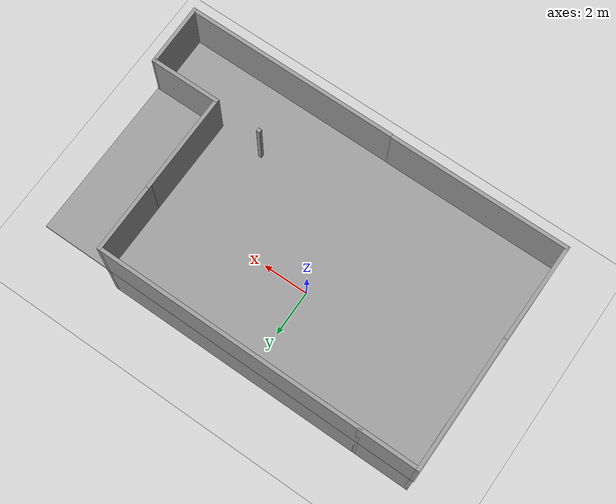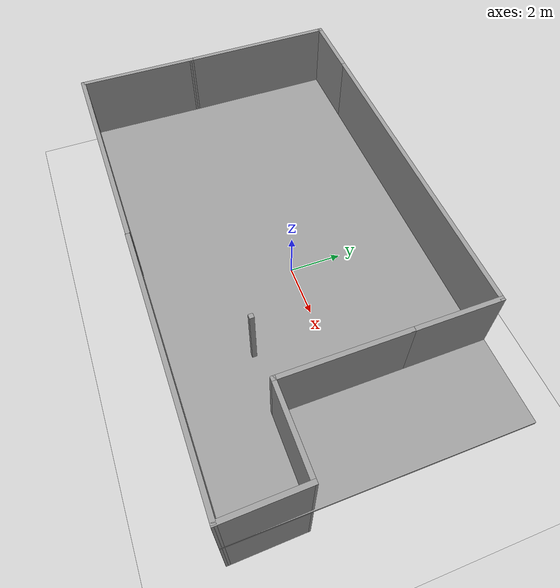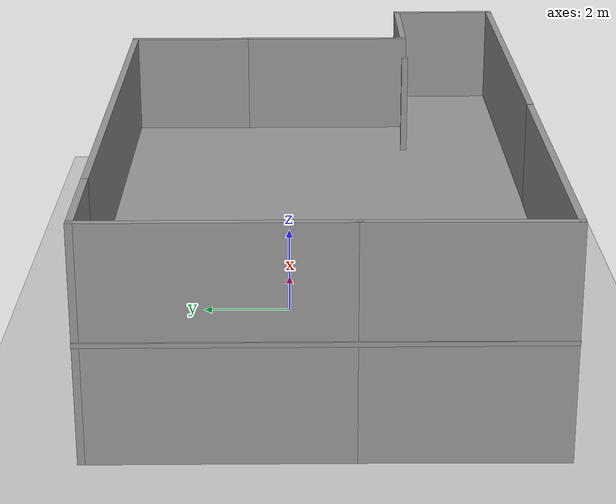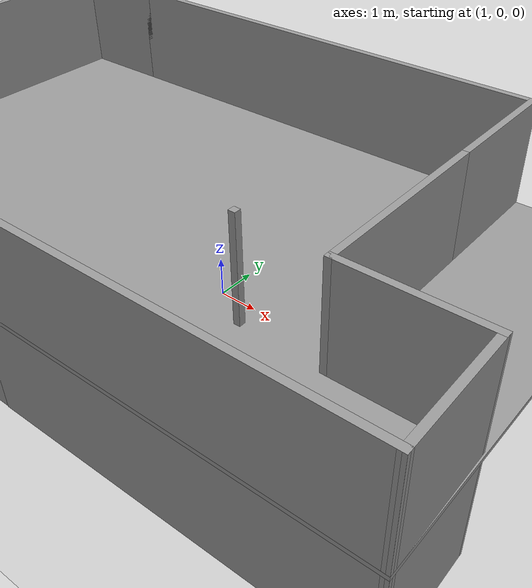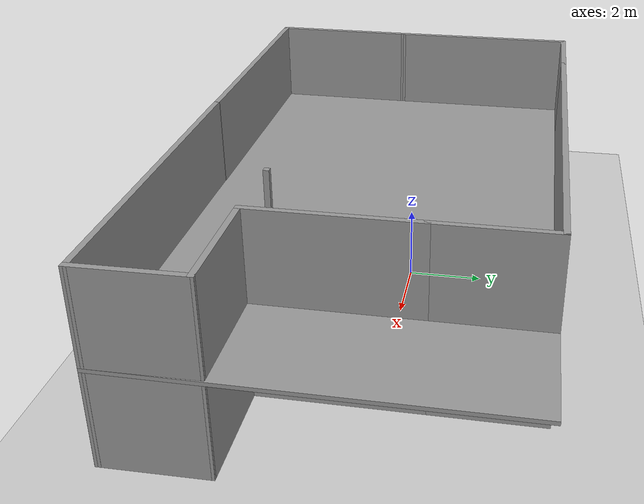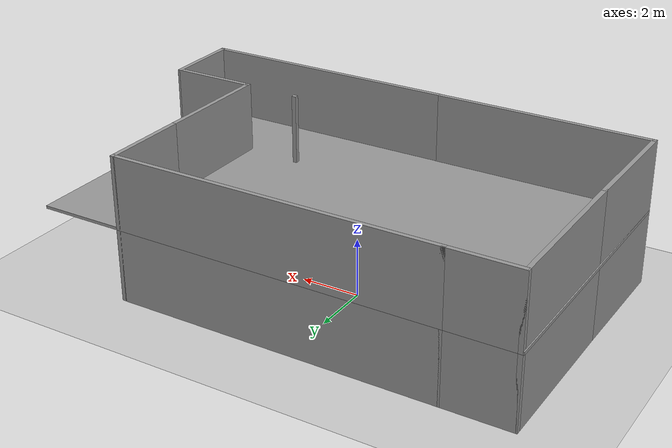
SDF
<sdf version="1.7">
 <world name="default">
  <light name="sun" type="directional">
   <pose>0 0 10 0 -0 0</pose>
   <diffuse>0.8 0.8 0.8 1</diffuse>
   <specular>0.2 0.2 0.2 1</specular>
   <attenuation>
    <range>1000</range>
    <constant>0.9</constant>
    <linear>0.01</linear>
    <quadratic>0.001</quadratic>
   </attenuation>
   <direction>-0.5 0.1 -0.9</direction>
   <spot><inner_angle>0</inner_angle><outer_angle>0</outer_angle><falloff>0</falloff></spot>
  </light>
  <model name="ground_plane">
   <static>1</static>
   <link name="link">
    <collision name="collision">
     <geometry><plane><normal>0 0 1</normal><size>100 100</size></plane></geometry>
     <surface>
      <contact><collide_bitmask>65535</collide_bitmask></contact>
      <friction><ode><mu>100</mu><mu2>50</mu2></ode></friction>
     </surface>
    </collision>
    <visual name="visual">
     <cast_shadows>0</cast_shadows>
     <geometry><plane><normal>0 0 1</normal><size>100 100</size></plane></geometry>
     <material>
      <script><uri>file://media/materials/scripts/gazebo.material</uri><name>Gazebo/Grey</name></script>
     </material>
    </visual>
   </link>
  </model>
  <gravity>0 0 -9.8</gravity>
  <magnetic_field>6e-06 2.3e-05 -4.2e-05</magnetic_field>
  <atmosphere type="adiabatic"/>
  <physics type="ode">
   <max_step_size>0.001</max_step_size>
   <real_time_factor>1</real_time_factor>
   <real_time_update_rate>1000</real_time_update_rate>
  </physics>
  <scene><ambient>0.4 0.4 0.4 1</ambient><background>0.7 0.7 0.7 1</background><shadows>1</shadows></scene>
  <spherical_coordinates>
   <surface_model>EARTH_WGS84</surface_model>
   <latitude_deg>0</latitude_deg>
   <longitude_deg>0</longitude_deg>
   <elevation>0</elevation>
   <heading_deg>0</heading_deg>
  </spherical_coordinates>
  <model name="demo">
   <pose>0.826103 -0.740708 0 0 -0 0</pose>
   <link name="Floor_4">
    <collision name="Floor_4_Collision">
     <geometry><box><size>16.5244 9.63235 0.1</size></box></geometry>
     <pose>0 0 0.05 0 -0 0</pose>
    </collision>
    <visual name="Floor_4_Visual">
     <pose>0 0 0.05 0 -0 0</pose>
     <geometry><box><size>16.5244 9.63235 0.1</size></box></geometry>
     <material>
      <script><uri>file://media/materials/scripts/gazebo.material</uri><name>Gazebo/Grey</name></script>
      <ambient>1 1 1 1</ambient>
     </material>
     <meta><layer>1</layer></meta>
    </visual>
    <pose>0 -0 2.5 0 -0 0</pose>
   </link>
   <link name="Wall_0">
    <collision name="Wall_0_Collision">
     <geometry><box><size>5.5 0.15 2.5</size></box></geometry>
     <pose>0 0 1.25 0 -0 0</pose>
    </collision>
    <visual name="Wall_0_Visual">
     <pose>0 0 1.25 0 -0 0</pose>
     <geometry><box><size>5.5 0.15 2.5</size></box></geometry>
     <material>
      <script><uri>file://media/materials/scripts/gazebo.material</uri><name>Gazebo/Grey</name></script>
      <ambient>1 1 1 1</ambient>
     </material>
     <meta><layer>0</layer></meta>
    </visual>
    <pose>-8.14649 2.06618 0 0 -0 -1.5708</pose>
   </link>
   <link name="Wall_1">
    <collision name="Wall_1_Collision">
     <geometry><box><size>4.27044 0.15 2.5</size></box></geometry>
     <pose>0 0 1.25 0 -0 0</pose>
    </collision>
    <visual name="Wall_1_Visual">
     <pose>0 0 1.25 0 -0 0</pose>
     <geometry><box><size>4.27044 0.15 2.5</size></box></geometry>
     <material>
      <script><uri>file://media/materials/scripts/gazebo.material</uri><name>Gazebo/Grey</name></script>
      <ambient>1 1 1 1</ambient>
     </material>
     <meta><layer>0</layer></meta>
    </visual>
    <pose>-8.16649 -2.66882 0 0 -0 -1.58051</pose>
   </link>
   <link name="Wall_10">
    <collision name="Wall_10_Collision">
     <geometry><box><size>3 0.15 2.5</size></box></geometry>
     <pose>0 0 1.25 0 -0 0</pose>
    </collision>
    <visual name="Wall_10_Visual">
     <pose>0 0 1.25 0 -0 0</pose>
     <geometry><box><size>3 0.15 2.5</size></box></geometry>
     <material>
      <script><uri>file://media/materials/scripts/gazebo.material</uri><name>Gazebo/Grey</name></script>
      <ambient>1 1 1 1</ambient>
     </material>
     <meta><layer>0</layer></meta>
    </visual>
    <pose>5.30351 3.31618 0 0 -0 -1.5708</pose>
   </link>
   <link name="Wall_11">
    <collision name="Wall_11_Collision">
     <geometry><box><size>4 0.15 2.5</size></box></geometry>
     <pose>0 0 1.25 0 -0 0</pose>
    </collision>
    <visual name="Wall_11_Visual">
     <pose>0 0 1.25 0 -0 0</pose>
     <geometry><box><size>4 0.15 2.5</size></box></geometry>
     <material>
      <script><uri>file://media/materials/scripts/gazebo.material</uri><name>Gazebo/Grey</name></script>
      <ambient>1 1 1 1</ambient>
     </material>
     <meta><layer>0</layer></meta>
    </visual>
    <pose>3.37851 1.89118 0 0 -0 3.14159</pose>
   </link>
   <link name="Wall_13">
    <collision name="Wall_13_Collision">
     <geometry><box><size>4.25 0.15 2.5</size></box></geometry>
     <pose>0 0 1.25 0 -0 0</pose>
    </collision>
    <visual name="Wall_13_Visual">
     <pose>0 0 1.25 0 -0 0</pose>
     <geometry><box><size>4.25 0.15 2.5</size></box></geometry>
     <material>
      <script><uri>file://media/materials/scripts/gazebo.material</uri><name>Gazebo/Grey</name></script>
      <ambient>1 1 1 1</ambient>
     </material>
     <meta><layer>0</layer></meta>
    </visual>
    <pose>5.30351 -0.158824 0 0 -0 -1.5708</pose>
   </link>
   <link name="Wall_14">
    <collision name="Wall_14_Collision">
     <geometry><box><size>3 0.15 2.5</size></box></geometry>
     <pose>0 0 1.25 0 -0 0</pose>
    </collision>
    <visual name="Wall_14_Visual">
     <pose>0 0 1.25 0 -0 0</pose>
     <geometry><box><size>3 0.15 2.5</size></box></geometry>
     <material>
      <script><uri>file://media/materials/scripts/gazebo.material</uri><name>Gazebo/Grey</name></script>
      <ambient>1 1 1 1</ambient>
     </material>
     <meta><layer>0</layer></meta>
    </visual>
    <pose>6.72851 -2.20882 0 0 -0 0</pose>
   </link>
   <link name="Wall_15">
    <collision name="Wall_15_Collision">
     <geometry><box><size>2.6816 0.15 2.5</size></box></geometry>
     <pose>0 0 1.25 0 -0 0</pose>
    </collision>
    <visual name="Wall_15_Visual">
     <pose>0 0 1.25 0 -0 0</pose>
     <geometry><box><size>2.6816 0.15 2.5</size></box></geometry>
     <material>
      <script><uri>file://media/materials/scripts/gazebo.material</uri><name>Gazebo/Grey</name></script>
      <ambient>1 1 1 1</ambient>
     </material>
     <meta><layer>0</layer></meta>
    </visual>
    <pose>8.16988 -3.47452 0 0 -0 -1.55787</pose>
   </link>
   <link name="Wall_16">
    <collision name="Wall_16_Collision">
     <geometry><box><size>9 0.15 2.5</size></box></geometry>
     <pose>0 0 1.25 0 -0 0</pose>
    </collision>
    <visual name="Wall_16_Visual">
     <pose>0 0 1.25 0 -0 0</pose>
     <geometry><box><size>9 0.15 2.5</size></box></geometry>
     <material>
      <script><uri>file://media/materials/scripts/gazebo.material</uri><name>Gazebo/Grey</name></script>
      <ambient>1 1 1 1</ambient>
     </material>
     <meta><layer>0</layer></meta>
    </visual>
    <pose>3.76125 -4.74021 0 0 -0 3.14159</pose>
   </link>
   <link name="Wall_173">
    <collision name="Wall_173_Collision">
     <geometry><box><size>5.5 0.15 2.5</size></box></geometry>
     <pose>0 0 1.25 0 -0 0</pose>
    </collision>
    <visual name="Wall_173_Visual">
     <pose>0 0 1.25 0 -0 0</pose>
     <geometry><box><size>5.5 0.15 2.5</size></box></geometry>
     <material>
      <script><uri>file://media/materials/scripts/gazebo.material</uri><name>Gazebo/Grey</name></script>
      <ambient>1 1 1 1</ambient>
     </material>
     <meta><layer>1</layer></meta>
    </visual>
    <pose>-8.14649 2.06618 2.5 0 -0 -1.5708</pose>
   </link>
   <link name="Wall_174">
    <collision name="Wall_174_Collision">
     <geometry><box><size>4.27019 0.15 2.5</size></box></geometry>
     <pose>0 0 1.25 0 -0 0</pose>
    </collision>
    <visual name="Wall_174_Visual">
     <pose>0 0 1.25 0 -0 0</pose>
     <geometry><box><size>4.27019 0.15 2.5</size></box></geometry>
     <material>
      <script><uri>file://media/materials/scripts/gazebo.material</uri><name>Gazebo/Grey</name></script>
      <ambient>1 1 1 1</ambient>
     </material>
     <meta><layer>1</layer></meta>
    </visual>
    <pose>-8.16649 -2.66882 2.5 0 -0 -1.58051</pose>
   </link>
   <link name="Wall_175">
    <collision name="Wall_175_Collision">
     <geometry><box><size>7.5 0.15 2.5</size></box></geometry>
     <pose>0 0 1.25 0 -0 0</pose>
    </collision>
    <visual name="Wall_175_Visual">
     <pose>0 0 1.25 0 -0 0</pose>
     <geometry><box><size>7.5 0.15 2.5</size></box></geometry>
     <material>
      <script><uri>file://media/materials/scripts/gazebo.material</uri><name>Gazebo/Grey</name></script>
      <ambient>1 1 1 1</ambient>
     </material>
     <meta><layer>1</layer></meta>
    </visual>
    <pose>-4.49149 -4.72882 2.5 0 -0 0</pose>
   </link>
   <link name="Wall_177">
    <collision name="Wall_177_Collision">
     <geometry><box><size>2.5 0.15 2.5</size></box></geometry>
     <pose>0 0 1.25 0 -0 0</pose>
    </collision>
    <visual name="Wall_177_Visual">
     <pose>0 0 1.25 0 -0 0</pose>
     <geometry><box><size>2.5 0.15 2.5</size></box></geometry>
     <material>
      <script><uri>file://media/materials/scripts/gazebo.material</uri><name>Gazebo/Grey</name></script>
      <ambient>1 1 1 1</ambient>
     </material>
     <meta><layer>1</layer></meta>
    </visual>
    <pose>-6.97149 4.74118 2.5 0 -0 0</pose>
   </link>
   <link name="Wall_179">
    <collision name="Wall_179_Collision">
     <geometry><box><size>11.25 0.15 2.5</size></box></geometry>
     <pose>0 0 1.25 0 -0 0</pose>
    </collision>
    <visual name="Wall_179_Visual">
     <pose>0 0 1.25 0 -0 0</pose>
     <geometry><box><size>11.25 0.15 2.5</size></box></geometry>
     <material>
      <script><uri>file://media/materials/scripts/gazebo.material</uri><name>Gazebo/Grey</name></script>
      <ambient>1 1 1 1</ambient>
     </material>
     <meta><layer>1</layer></meta>
    </visual>
    <pose>-0.246486 4.74118 2.5 0 -0 0</pose>
   </link>
   <link name="Wall_180">
    <collision name="Wall_180_Collision">
     <geometry><box><size>3 0.15 2.5</size></box></geometry>
     <pose>0 0 1.25 0 -0 0</pose>
    </collision>
    <visual name="Wall_180_Visual">
     <pose>0 0 1.25 0 -0 0</pose>
     <geometry><box><size>3 0.15 2.5</size></box></geometry>
     <material>
      <script><uri>file://media/materials/scripts/gazebo.material</uri><name>Gazebo/Grey</name></script>
      <ambient>1 1 1 1</ambient>
     </material>
     <meta><layer>1</layer></meta>
    </visual>
    <pose>5.30351 3.31618 2.5 0 -0 -1.5708</pose>
   </link>
   <link name="Wall_182">
    <collision name="Wall_182_Collision">
     <geometry><box><size>4.25 0.15 2.5</size></box></geometry>
     <pose>0 0 1.25 0 -0 0</pose>
    </collision>
    <visual name="Wall_182_Visual">
     <pose>0 0 1.25 0 -0 0</pose>
     <geometry><box><size>4.25 0.15 2.5</size></box></geometry>
     <material>
      <script><uri>file://media/materials/scripts/gazebo.material</uri><name>Gazebo/Grey</name></script>
      <ambient>1 1 1 1</ambient>
     </material>
     <meta><layer>1</layer></meta>
    </visual>
    <pose>5.30351 -0.158824 2.5 0 -0 -1.5708</pose>
   </link>
   <link name="Wall_183">
    <collision name="Wall_183_Collision">
     <geometry><box><size>3 0.15 2.5</size></box></geometry>
     <pose>0 0 1.25 0 -0 0</pose>
    </collision>
    <visual name="Wall_183_Visual">
     <pose>0 0 1.25 0 -0 0</pose>
     <geometry><box><size>3 0.15 2.5</size></box></geometry>
     <material>
      <script><uri>file://media/materials/scripts/gazebo.material</uri><name>Gazebo/Grey</name></script>
      <ambient>1 1 1 1</ambient>
     </material>
     <meta><layer>1</layer></meta>
    </visual>
    <pose>6.72851 -2.20882 2.5 0 -0 0</pose>
   </link>
   <link name="Wall_184">
    <collision name="Wall_184_Collision">
     <geometry><box><size>2.6816 0.15 2.5</size></box></geometry>
     <pose>0 0 1.25 0 -0 0</pose>
    </collision>
    <visual name="Wall_184_Visual">
     <pose>0 0 1.25 0 -0 0</pose>
     <geometry><box><size>2.6816 0.15 2.5</size></box></geometry>
     <material>
      <script><uri>file://media/materials/scripts/gazebo.material</uri><name>Gazebo/Grey</name></script>
      <ambient>1 1 1 1</ambient>
     </material>
     <meta><layer>1</layer></meta>
    </visual>
    <pose>8.16988 -3.47452 2.5 0 -0 -1.55787</pose>
   </link>
   <link name="Wall_185">
    <collision name="Wall_185_Collision">
     <geometry><box><size>9 0.15 2.5</size></box></geometry>
     <pose>0 0 1.25 0 -0 0</pose>
    </collision>
    <visual name="Wall_185_Visual">
     <pose>0 0 1.25 0 -0 0</pose>
     <geometry><box><size>9 0.15 2.5</size></box></geometry>
     <material>
      <script><uri>file://media/materials/scripts/gazebo.material</uri><name>Gazebo/Grey</name></script>
      <ambient>1 1 1 1</ambient>
     </material>
     <meta><layer>1</layer></meta>
    </visual>
    <pose>3.76125 -4.74021 2.5 0 -0 3.14159</pose>
   </link>
   <link name="Wall_19">
    <collision name="Wall_19_Collision">
     <geometry><box><size>2 0.15 2.5</size></box></geometry>
     <pose>0 0 1.25 0 -0 0</pose>
    </collision>
    <visual name="Wall_19_Visual">
     <pose>0 0 1.25 0 -0 0</pose>
     <geometry><box><size>2 0.15 2.5</size></box></geometry>
     <material>
      <script><uri>file://media/materials/scripts/gazebo.material</uri><name>Gazebo/Grey</name></script>
      <ambient>1 1 1 1</ambient>
     </material>
     <meta><layer>0</layer></meta>
    </visual>
    <pose>0.234029 -2.25248 0 0 -0 0</pose>
   </link>
   <link name="Wall_2">
    <collision name="Wall_2_Collision">
     <geometry><box><size>7.5 0.15 2.5</size></box></geometry>
     <pose>0 0 1.25 0 -0 0</pose>
    </collision>
    <visual name="Wall_2_Visual">
     <pose>0 0 1.25 0 -0 0</pose>
     <geometry><box><size>7.5 0.15 2.5</size></box></geometry>
     <material>
      <script><uri>file://media/materials/scripts/gazebo.material</uri><name>Gazebo/Grey</name></script>
      <ambient>1 1 1 1</ambient>
     </material>
     <meta><layer>0</layer></meta>
    </visual>
    <pose>-4.49149 -4.72882 0 0 -0 0</pose>
   </link>
   <link name="Wall_200">
    <collision name="Wall_200_Collision">
     <geometry><box><size>0.15 0.15 2.5</size></box></geometry>
     <pose>0 0 1.25 0 -0 0</pose>
    </collision>
    <visual name="Wall_200_Visual">
     <pose>0 0 1.25 0 -0 0</pose>
     <geometry><box><size>0.15 0.15 2.5</size></box></geometry>
     <material>
      <script><uri>file://media/materials/scripts/gazebo.material</uri><name>Gazebo/Grey</name></script>
      <ambient>1 1 1 1</ambient>
     </material>
     <meta><layer>1</layer></meta>
    </visual>
    <pose>3.33073 -2.13943 2.5 0 -0 0</pose>
   </link>
   <link name="Wall_21">
    <collision name="Wall_21_Collision">
     <geometry><box><size>2.5 0.15 2.5</size></box></geometry>
     <pose>0 0 1.25 0 -0 0</pose>
    </collision>
    <visual name="Wall_21_Visual">
     <pose>0 0 1.25 0 -0 0</pose>
     <geometry><box><size>2.5 0.15 2.5</size></box></geometry>
     <material>
      <script><uri>file://media/materials/scripts/gazebo.material</uri><name>Gazebo/Grey</name></script>
      <ambient>1 1 1 1</ambient>
     </material>
     <meta><layer>0</layer></meta>
    </visual>
    <pose>0.573753 -3.46553 0 0 -0 -1.5708</pose>
   </link>
   <link name="Wall_23">
    <collision name="Wall_23_Collision">
     <geometry><box><size>1 0.15 2.5</size></box></geometry>
     <pose>0 0 1.25 0 -0 0</pose>
    </collision>
    <visual name="Wall_23_Visual">
     <pose>0 0 1.25 0 -0 0</pose>
     <geometry><box><size>1 0.15 2.5</size></box></geometry>
     <material>
      <script><uri>file://media/materials/scripts/gazebo.material</uri><name>Gazebo/Grey</name></script>
      <ambient>1 1 1 1</ambient>
     </material>
     <meta><layer>0</layer></meta>
    </visual>
    <pose>0.975623 -3.07697 0 0 -0 0</pose>
   </link>
   <link name="Wall_25">
    <collision name="Wall_25_Collision">
     <geometry><box><size>1 0.15 2.5</size></box></geometry>
     <pose>0 0 1.25 0 -0 0</pose>
    </collision>
    <visual name="Wall_25_Visual">
     <pose>0 0 1.25 0 -0 0</pose>
     <geometry><box><size>1 0.15 2.5</size></box></geometry>
     <material>
      <script><uri>file://media/materials/scripts/gazebo.material</uri><name>Gazebo/Grey</name></script>
      <ambient>1 1 1 1</ambient>
     </material>
     <meta><layer>0</layer></meta>
    </visual>
    <pose>1.27356 4.30512 0 0 -0 -1.5708</pose>
   </link>
   <link name="Wall_27">
    <collision name="Wall_27_Collision">
     <geometry><box><size>3.5 0.15 2.5</size></box></geometry>
     <pose>0 0 1.25 0 -0 0</pose>
    </collision>
    <visual name="Wall_27_Visual">
     <pose>0 0 1.25 0 -0 0</pose>
     <geometry><box><size>3.5 0.15 2.5</size></box></geometry>
     <material>
      <script><uri>file://media/materials/scripts/gazebo.material</uri><name>Gazebo/Grey</name></script>
      <ambient>1 1 1 1</ambient>
     </material>
     <meta><layer>0</layer></meta>
    </visual>
    <pose>1.30016 0.927106 0 0 -0 -1.5708</pose>
   </link>
   <link name="Wall_28">
    <collision name="Wall_28_Collision">
     <geometry><box><size>1 0.15 2.5</size></box></geometry>
     <pose>0 0 1.25 0 -0 0</pose>
    </collision>
    <visual name="Wall_28_Visual">
     <pose>0 0 1.25 0 -0 0</pose>
     <geometry><box><size>1 0.15 2.5</size></box></geometry>
     <material>
      <script><uri>file://media/materials/scripts/gazebo.material</uri><name>Gazebo/Grey</name></script>
      <ambient>1 1 1 1</ambient>
     </material>
     <meta><layer>0</layer></meta>
    </visual>
    <pose>1.72516 -0.747894 0 0 -0 0</pose>
   </link>
   <link name="Wall_30">
    <collision name="Wall_30_Collision">
     <geometry><box><size>0.5 0.15 2.5</size></box></geometry>
     <pose>0 0 1.25 0 -0 0</pose>
    </collision>
    <visual name="Wall_30_Visual">
     <pose>0 0 1.25 0 -0 0</pose>
     <geometry><box><size>0.5 0.15 2.5</size></box></geometry>
     <material>
      <script><uri>file://media/materials/scripts/gazebo.material</uri><name>Gazebo/Grey</name></script>
      <ambient>1 1 1 1</ambient>
     </material>
     <meta><layer>0</layer></meta>
    </visual>
    <pose>3.29518 -0.791518 0 0 -0 -1.5708</pose>
   </link>
   <link name="Wall_33">
    <collision name="Wall_33_Collision">
     <geometry><box><size>2 0.15 2.5</size></box></geometry>
     <pose>0 0 1.25 0 -0 0</pose>
    </collision>
    <visual name="Wall_33_Visual">
     <pose>0 0 1.25 0 -0 0</pose>
     <geometry><box><size>2 0.15 2.5</size></box></geometry>
     <material>
      <script><uri>file://media/materials/scripts/gazebo.material</uri><name>Gazebo/Grey</name></script>
      <ambient>1 1 1 1</ambient>
     </material>
     <meta><layer>0</layer></meta>
    </visual>
    <pose>4.32187 -0.846909 0 0 -0 3.14159</pose>
   </link>
   <link name="Wall_35">
    <collision name="Wall_35_Collision">
     <geometry><box><size>2.12444 0.15 2.5</size></box></geometry>
     <pose>0 0 1.25 0 -0 0</pose>
    </collision>
    <visual name="Wall_35_Visual">
     <pose>0 0 1.25 0 -0 0</pose>
     <geometry><box><size>2.12444 0.15 2.5</size></box></geometry>
     <material>
      <script><uri>file://media/materials/scripts/gazebo.material</uri><name>Gazebo/Grey</name></script>
      <ambient>1 1 1 1</ambient>
     </material>
     <meta><layer>0</layer></meta>
    </visual>
    <pose>4.31712 -2.17413 0 0 -0 3.10643</pose>
   </link>
   <link name="Wall_4">
    <collision name="Wall_4_Collision">
     <geometry><box><size>7.5 0.15 2.5</size></box></geometry>
     <pose>0 0 1.25 0 -0 0</pose>
    </collision>
    <visual name="Wall_4_Visual">
     <pose>0 0 1.25 0 -0 0</pose>
     <geometry><box><size>7.5 0.15 2.5</size></box></geometry>
     <material>
      <script><uri>file://media/materials/scripts/gazebo.material</uri><name>Gazebo/Grey</name></script>
      <ambient>1 1 1 1</ambient>
     </material>
     <meta><layer>0</layer></meta>
    </visual>
    <pose>-4.47149 -0.608824 0 0 -0 3.14159</pose>
   </link>
   <link name="Wall_40">
    <collision name="Wall_40_Collision">
     <geometry><box><size>1 0.15 2.5</size></box></geometry>
     <pose>0 0 1.25 0 -0 0</pose>
    </collision>
    <visual name="Wall_40_Visual">
     <pose>0 0 1.25 0 -0 0</pose>
     <geometry><box><size>1 0.15 2.5</size></box></geometry>
     <material>
      <script><uri>file://media/materials/scripts/gazebo.material</uri><name>Gazebo/Grey</name></script>
      <ambient>1 1 1 1</ambient>
     </material>
     <meta><layer>0</layer></meta>
    </visual>
    <pose>4.89119 -2.69073 0 0 -0 -1.5708</pose>
   </link>
   <link name="Wall_41">
    <collision name="Wall_41_Collision">
     <geometry><box><size>0.5 0.15 2.5</size></box></geometry>
     <pose>0 0 1.25 0 -0 0</pose>
    </collision>
    <visual name="Wall_41_Visual">
     <pose>0 0 1.25 0 -0 0</pose>
     <geometry><box><size>0.5 0.15 2.5</size></box></geometry>
     <material>
      <script><uri>file://media/materials/scripts/gazebo.material</uri><name>Gazebo/Grey</name></script>
      <ambient>1 1 1 1</ambient>
     </material>
     <meta><layer>0</layer></meta>
    </visual>
    <pose>5.06619 -3.11573 0 0 -0 0</pose>
   </link>
   <link name="Wall_42">
    <collision name="Wall_42_Collision">
     <geometry><box><size>1.05905 0.15 2.5</size></box></geometry>
     <pose>0 0 1.25 0 -0 0</pose>
    </collision>
    <visual name="Wall_42_Visual">
     <pose>0 0 1.25 0 -0 0</pose>
     <geometry><box><size>1.05905 0.15 2.5</size></box></geometry>
     <material>
      <script><uri>file://media/materials/scripts/gazebo.material</uri><name>Gazebo/Grey</name></script>
      <ambient>1 1 1 1</ambient>
     </material>
     <meta><layer>0</layer></meta>
    </visual>
    <pose>5.27235 -2.66228 0 0 -0 1.50218</pose>
   </link>
   <link name="Wall_44">
    <collision name="Wall_44_Collision">
     <geometry><box><size>1.75 0.15 2.5</size></box></geometry>
     <pose>0 0 1.25 0 -0 0</pose>
    </collision>
    <visual name="Wall_44_Visual">
     <pose>0 0 1.25 0 -0 0</pose>
     <geometry><box><size>1.75 0.15 2.5</size></box></geometry>
     <material>
      <script><uri>file://media/materials/scripts/gazebo.material</uri><name>Gazebo/Grey</name></script>
      <ambient>1 1 1 1</ambient>
     </material>
     <meta><layer>0</layer></meta>
    </visual>
    <pose>-5.71903 0.262602 0 0 -0 -1.5708</pose>
   </link>
   <link name="Wall_46">
    <collision name="Wall_46_Collision">
     <geometry><box><size>1.75 0.15 2.5</size></box></geometry>
     <pose>0 0 1.25 0 -0 0</pose>
    </collision>
    <visual name="Wall_46_Visual">
     <pose>0 0 1.25 0 -0 0</pose>
     <geometry><box><size>1.75 0.15 2.5</size></box></geometry>
     <material>
      <script><uri>file://media/materials/scripts/gazebo.material</uri><name>Gazebo/Grey</name></script>
      <ambient>1 1 1 1</ambient>
     </material>
     <meta><layer>0</layer></meta>
    </visual>
    <pose>3.33603 1.08929 0 0 -0 -1.5708</pose>
   </link>
   <link name="Wall_48">
    <collision name="Wall_48_Collision">
     <geometry><box><size>0.15 0.15 2.5</size></box></geometry>
     <pose>0 0 1.25 0 -0 0</pose>
    </collision>
    <visual name="Wall_48_Visual">
     <pose>0 0 1.25 0 -0 0</pose>
     <geometry><box><size>0.15 0.15 2.5</size></box></geometry>
     <material>
      <script><uri>file://media/materials/scripts/gazebo.material</uri><name>Gazebo/Grey</name></script>
      <ambient>1 1 1 1</ambient>
     </material>
     <meta><layer>0</layer></meta>
    </visual>
    <pose>3.33073 -2.13943 0 0 -0 0</pose>
   </link>
   <link name="Wall_49">
    <collision name="Wall_49_Collision">
     <geometry><box><size>1 0.15 2.5</size></box></geometry>
     <pose>0 0 1.25 0 -0 0</pose>
    </collision>
    <visual name="Wall_49_Visual">
     <pose>0 0 1.25 0 -0 0</pose>
     <geometry><box><size>1 0.15 2.5</size></box></geometry>
     <material>
      <script><uri>file://media/materials/scripts/gazebo.material</uri><name>Gazebo/Grey</name></script>
      <ambient>1 1 1 1</ambient>
     </material>
     <meta><layer>0</layer></meta>
    </visual>
    <pose>3.33073 -2.56443 0 0 -0 -1.5708</pose>
   </link>
   <link name="Wall_51">
    <collision name="Wall_51_Collision">
     <geometry><box><size>0.412102 0.15 2.5</size></box></geometry>
     <pose>0 0 1.25 0 -0 0</pose>
    </collision>
    <visual name="Wall_51_Visual">
     <pose>0 0 1.25 0 -0 0</pose>
     <geometry><box><size>0.412102 0.15 2.5</size></box></geometry>
     <material>
      <script><uri>file://media/materials/scripts/gazebo.material</uri><name>Gazebo/Grey</name></script>
      <ambient>1 1 1 1</ambient>
     </material>
     <meta><layer>0</layer></meta>
    </visual>
    <pose>3.3292 -2.00839 0 0 -0 -1.55914</pose>
   </link>
   <link name="Wall_6">
    <collision name="Wall_6_Collision">
     <geometry><box><size>2.5 0.15 2.5</size></box></geometry>
     <pose>0 0 1.25 0 -0 0</pose>
    </collision>
    <visual name="Wall_6_Visual">
     <pose>0 0 1.25 0 -0 0</pose>
     <geometry><box><size>2.5 0.15 2.5</size></box></geometry>
     <material>
      <script><uri>file://media/materials/scripts/gazebo.material</uri><name>Gazebo/Grey</name></script>
      <ambient>1 1 1 1</ambient>
     </material>
     <meta><layer>0</layer></meta>
    </visual>
    <pose>-6.97149 4.74118 0 0 -0 0</pose>
   </link>
   <link name="Wall_7">
    <collision name="Wall_7_Collision">
     <geometry><box><size>1 0.15 2.5</size></box></geometry>
     <pose>0 0 1.25 0 -0 0</pose>
    </collision>
    <visual name="Wall_7_Visual">
     <pose>0 0 1.25 0 -0 0</pose>
     <geometry><box><size>1 0.15 2.5</size></box></geometry>
     <material>
      <script><uri>file://media/materials/scripts/gazebo.material</uri><name>Gazebo/Grey</name></script>
      <ambient>1 1 1 1</ambient>
     </material>
     <meta><layer>0</layer></meta>
    </visual>
    <pose>-5.79649 4.31618 0 0 -0 -1.5708</pose>
   </link>
   <link name="Wall_9">
    <collision name="Wall_9_Collision">
     <geometry><box><size>11.25 0.15 2.5</size></box></geometry>
     <pose>0 0 1.25 0 -0 0</pose>
    </collision>
    <visual name="Wall_9_Visual">
     <pose>0 0 1.25 0 -0 0</pose>
     <geometry><box><size>11.25 0.15 2.5</size></box></geometry>
     <material>
      <script><uri>file://media/materials/scripts/gazebo.material</uri><name>Gazebo/Grey</name></script>
      <ambient>1 1 1 1</ambient>
     </material>
     <meta><layer>0</layer></meta>
    </visual>
    <pose>-0.246486 4.74118 0 0 -0 0</pose>
   </link>
   <static>1</static>
  </model>
 </world>
</sdf>
